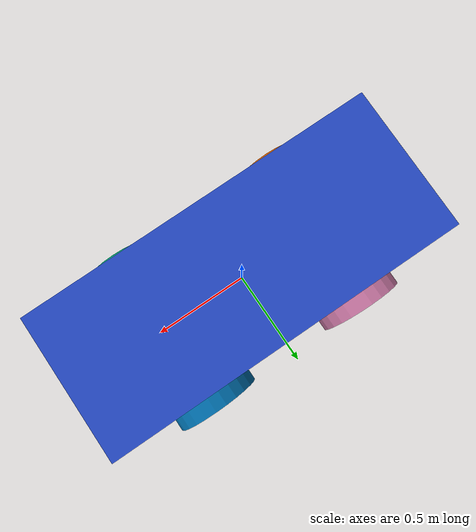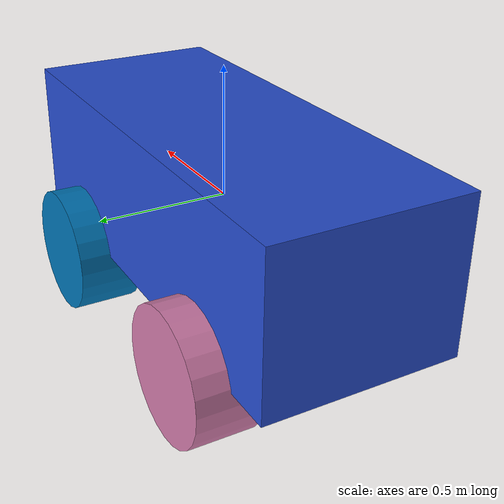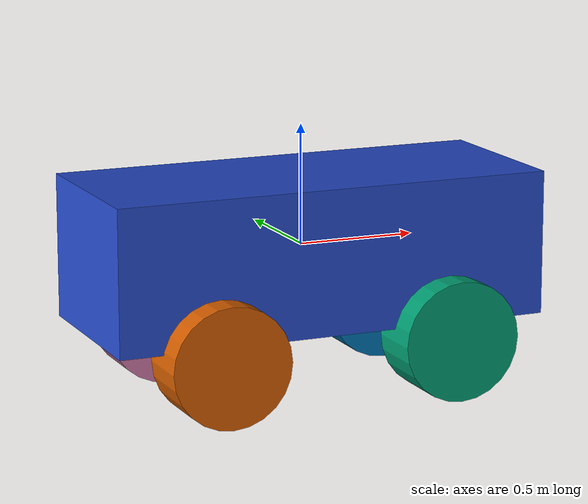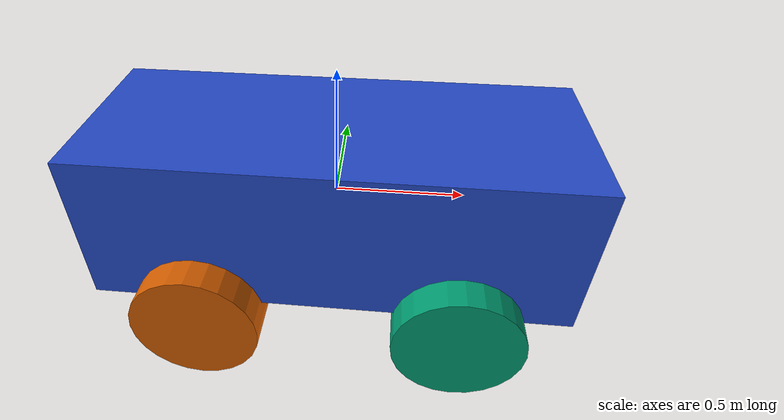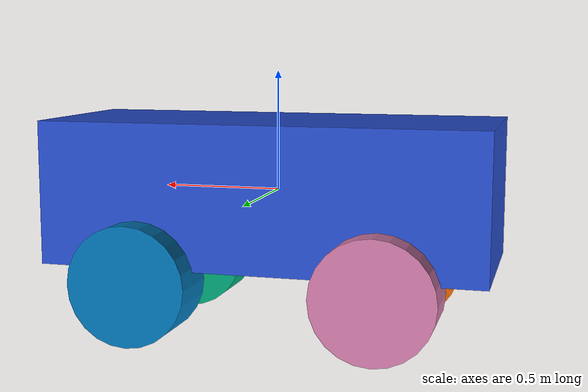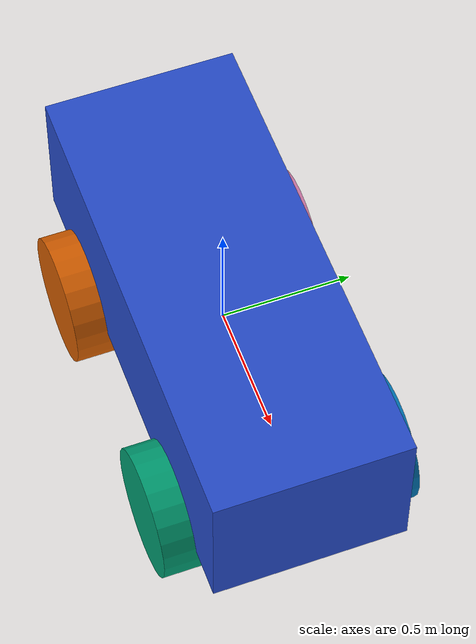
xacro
<?xml version="1.0"?>
<robot name="tigra" xmlns:xacro="http://www.ros.org/wiki/xacro">
	<xacro:property name="length" value="1.85" />
	<xacro:property name="width" value="0.75" />
	<xacro:property name="heigth" value="0.6" />
	<xacro:property name="mass" value="420" />
	<xacro:property name="wheel_width" value="0.25" />
	<xacro:property name="wheel_radius" value="0.25" />
	<xacro:property name="wheel_mass" value="20" />
	<xacro:property name="wheel_turn_limit" value="${pi/4}" />

	<!-- inertia -->
	<xacro:macro name="null_inertial">
		<inertial>
			<mass value="1.0" />
			<inertia ixx="0.01" ixy="0" ixz="0" iyy="0.01" iyz="0" izz="0.01" />
		</inertial>
	</xacro:macro>
	<xacro:macro name="base_inertial" params="width length height mass *origin">
		<inertial>
			<xacro:insert_block name="origin" />
			<mass value="${mass}" />
			<inertia ixx="${mass * (width * width + height * height) / 12}" ixy="0" ixz="0" iyy="${mass * (length * length + height * height) / 12}" iyz="0" izz="${mass * (width * width + length * length) / 12}" />
		</inertial>
	</xacro:macro>
	<xacro:macro name="wheel_inertial" params="r h mass *origin">
		<inertial>
			<xacro:insert_block name="origin" />
			<mass value="${mass}" />
			<inertia ixx="${mass / 12 * (3 * r * r + h * h)}" ixy="0.0" ixz="0.0" iyy="${mass / 12 * (3 * r * r + h * h)}" iyz="0.0" izz="${mass / 2 * r * r}" />
		</inertial>
	</xacro:macro>

	<!-- xacro base new -->
	<link name="base_link">
		<visual>
			<origin xyz="0 0 0" rpy="0 0 0" />
			<geometry>
				<box size="${length} ${width} ${heigth}" />
			</geometry>
			<material name="blue" />
		</visual>
		<collision name="base_collision">
			<origin xyz="0 0 0" rpy="0 0 0" />
			<geometry>
				<box size="${length} ${width} ${heigth}" />
			</geometry>
		</collision>
		<xacro:base_inertial width="${width}" length="${length}" height="${heigth}" mass="${mass}">
			<origin xyz="0 0 0" rpy="0 0 0" />
		</xacro:base_inertial>
	</link>

	<!-- xacro wheel new -->
	<xacro:macro name="wheels" params="name">
		<link name="${name}">
			<visual>
				<origin xyz="0 0 0" rpy="${pi/2} 0 0" />
				<geometry>
					<cylinder length="${wheel_width}" radius="${wheel_radius}" />
				</geometry>
			</visual>
			<collision>
				<origin xyz="0 0 0" rpy="${pi/2} 0 0" />
				<geometry>
					<cylinder length="${wheel_width}" radius="${wheel_radius}" />
				</geometry>
			</collision>
			<xacro:wheel_inertial r="${wheel_radius}" h="${wheel_width}" mass="${wheel_mass}">
				<origin xyz="0 0 0" rpy="${pi/2} 0 0" />
			</xacro:wheel_inertial>
		</link>
	</xacro:macro>

	<!-- speed -->
	<xacro:macro name="speed_wheel" params="name base_name xyz ">
		<joint name="${name}_speed_joint" type="continuous">
			<parent link="${base_name}" />
			<child link="wheel_${name}" />
			<origin xyz="${xyz}" rpy="0 0 0" />
			<axis xyz="0 1 0" />
			<limit effort="500" velocity="10" />
		</joint>

		<xacro:wheels name="wheel_${name}" />
	</xacro:macro>

  <!-- steer -->
	<xacro:macro name="steer_wheel" params="name base_name xyz">
		<joint name="${name}_steer_joint" type="revolute">
			<parent link="${base_name}" />
			<child link="steer_${name}" />
			<origin xyz="${xyz}" rpy="0 0 0" />
			<axis xyz="0 0 1" />
			<limit lower="${-wheel_turn_limit}" upper="${wheel_turn_limit}" effort="1000" velocity="0" />
		</joint>

		<link name="steer_${name}">
			<xacro:null_inertial />
		</link>

		<joint name="${name}_speed_joint" type="continuous">
			<parent link="steer_${name}" />
			<child link="wheel_${name}" />
			<origin xyz="0 0 0" rpy="0 0 0" />
			<axis xyz="0 1 0" />
			<limit effort="500" velocity="10" />
		</joint>

		<xacro:wheels name="wheel_${name}" />
	</xacro:macro>

  	<gazebo>
    		<plugin name="tigra_interface_plugin" filename="libtigra_interface_plugin.so" >
      			<robotName>tigra</robotName>
            <wheel_rl_joint_>joint_left_wheel_1_speed_joint</wheel_rl_joint_>
            <wheel_rr_joint_>joint_right_wheel_1_speed_joint</wheel_rr_joint_>
            <wheel_fl_joint_>joint_left_wheel_2_speed_joint</wheel_fl_joint_>
            <wheel_fr_joint_>joint_right_wheel_2_speed_joint</wheel_fr_joint_>
   		 </plugin>
	</gazebo>

	<!-- steer_wheel -->
	<xacro:steer_wheel name="joint_right_wheel_1" base_name="base_link" xyz="0.5 -0.375 -0.35" />
	<xacro:steer_wheel name="joint_left_wheel_1" base_name="base_link" xyz="0.5 0.375 -0.35" />

	<!-- speed_wheel -->
	<xacro:speed_wheel name="joint_right_wheel_2" base_name="base_link" xyz="-0.5 -0.375 -0.35" />
	<xacro:speed_wheel name="joint_left_wheel_2" base_name="base_link" xyz="-0.5 0.375 -0.35" />
</robot>
